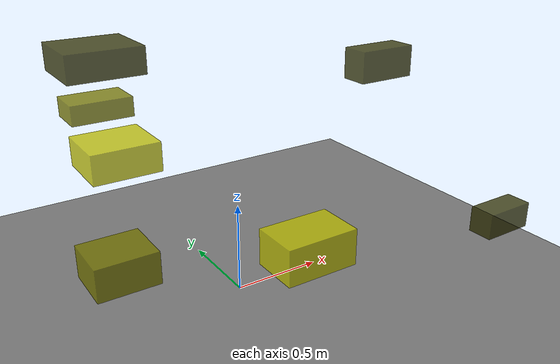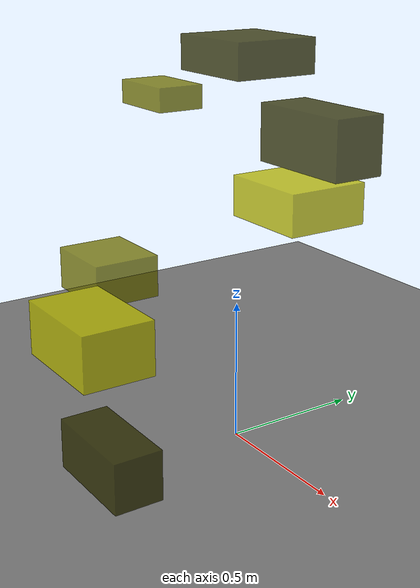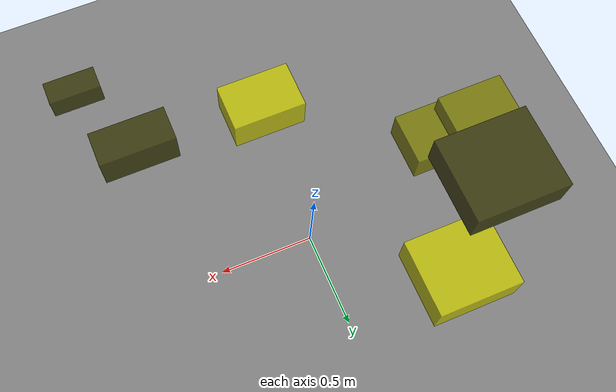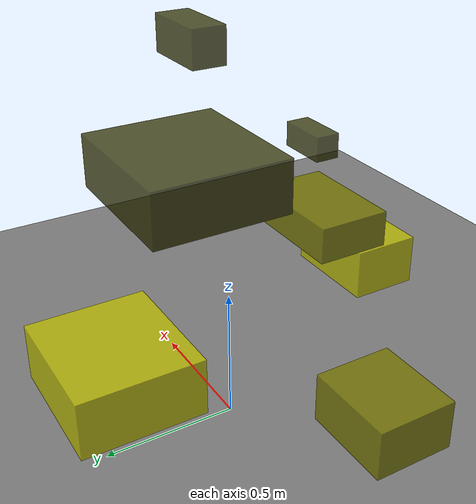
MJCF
<?xml version="1.0"?>
<mujoco model="obstacle_scene">
  <compiler angle="radian" coordinate="local"/>
  <option timestep="0.001" gravity="0 0 -9.81"/>

  <asset>
    <material name="obstacle_mat" rgba="0.8 0.8 0.0 0.8"/>
    <material name="ground_mat" rgba="0.5 0.5 0.5 1"/>
  </asset>

  <worldbody>
    <!-- Ground plane -->
    <geom name="ground" type="plane" size="3 3 0.1" material="ground_mat"/>

    <!-- Obstacles -->
    <body name="obstacle_0" pos="0.708393 -0.239557 1.230289">
      <geom name="obs_0" type="box" size="0.156288 0.074155 0.079421" rgba="0.2 0.2 0.0 0.8"/>
    </body>
    <body name="obstacle_1" pos="-0.660055 0.103617 1.136233">
      <geom name="obs_1" type="box" size="0.142762 0.093440 0.046093" rgba="0.5 0.5 0.0 0.8"/>
    </body>
    <body name="obstacle_2" pos="0.036597 -0.582486 0.521578">
      <geom name="obs_2" type="box" size="0.185415 0.123294 0.092473" rgba="0.8 0.8 0.0 0.8"/>
    </body>
    <body name="obstacle_3" pos="-0.543804 0.422682 1.279907">
      <geom name="obs_3" type="box" size="0.196839 0.179567 0.070636" rgba="0.2 0.2 0.0 0.8"/>
    </body>
    <body name="obstacle_4" pos="-0.706298 -0.124652 0.443072">
      <geom name="obs_4" type="box" size="0.153824 0.134363 0.084040" rgba="0.5 0.5 0.0 0.8"/>
    </body>
    <body name="obstacle_5" pos="-0.425700 0.597864 0.694887">
      <geom name="obs_5" type="box" size="0.197242 0.178894 0.086244" rgba="0.8 0.8 0.0 0.8"/>
    </body>
    <body name="obstacle_6" pos="0.879185 -0.963368 0.604149">
      <geom name="obs_6" type="box" size="0.128375 0.059830 0.061492" rgba="0.2 0.2 0.0 0.8"/>
    </body>
  </worldbody>
</mujoco>
